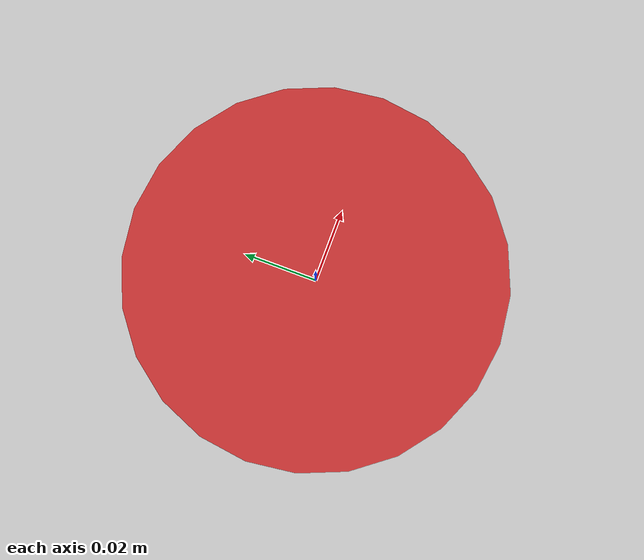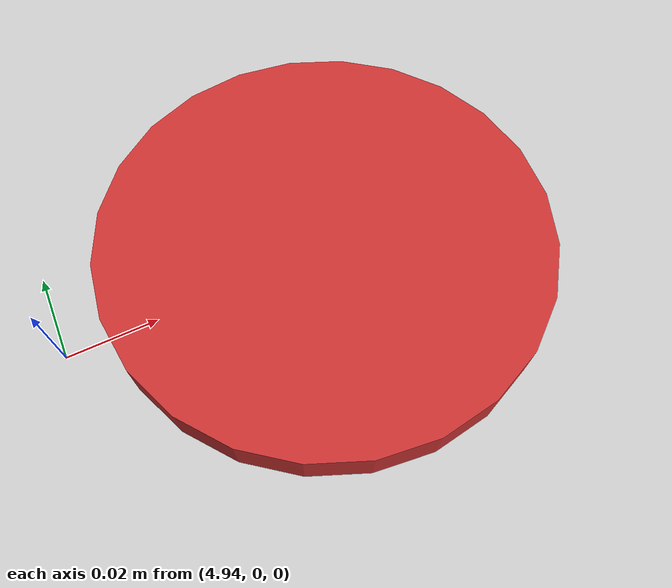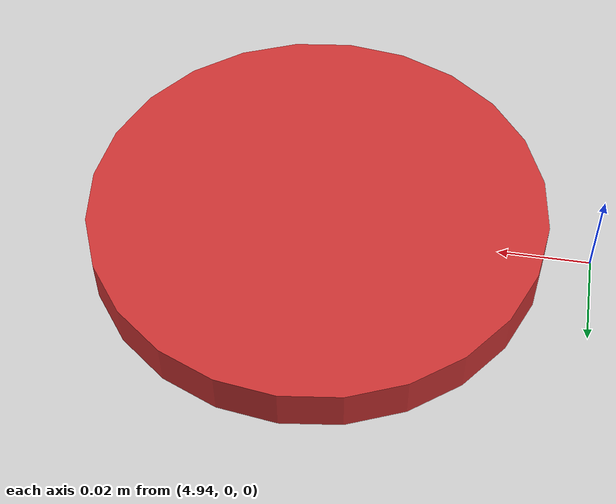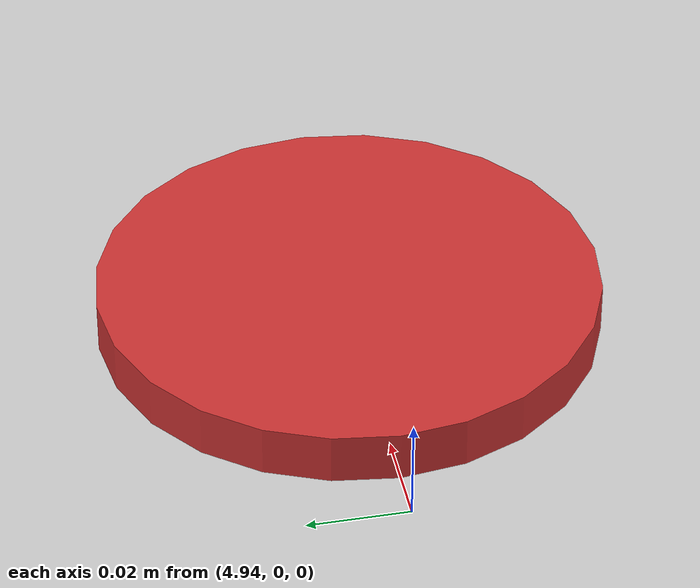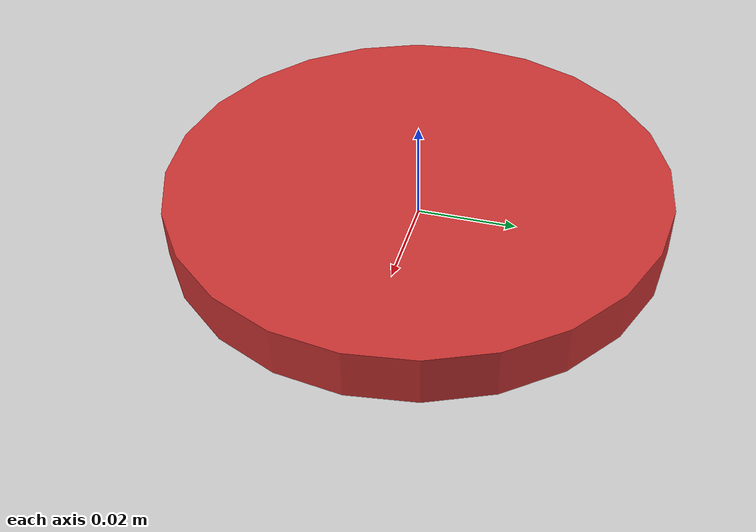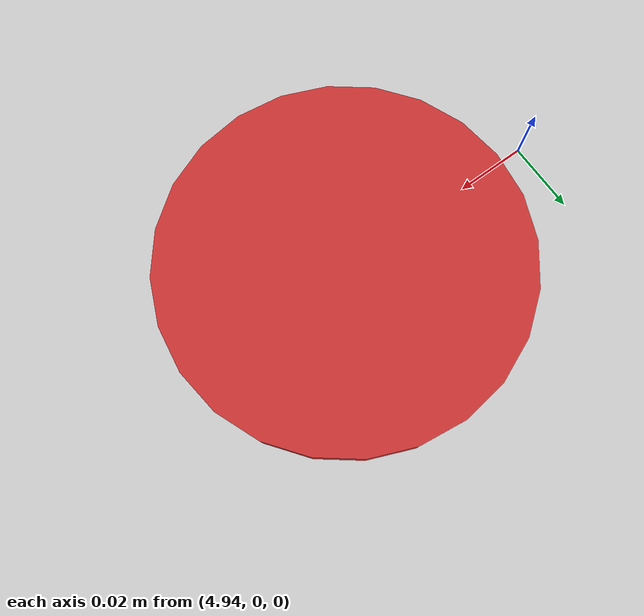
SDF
<?xml version='1.0' encoding='utf-8'?>
<sdf version="1.7">&lt;?xml version="1.0"?&gt;
	<world name="moving_cube">

		<physics name="1ms" type="ignored">
			<max_step_size>0.001</max_step_size>
			<real_time_factor>1.0</real_time_factor>
		</physics>
		<plugin
			filename="libignition-gazebo-physics-system.so"
			name="ignition::gazebo::systems::Physics">
		</plugin>
		<plugin
			filename="libignition-gazebo-user-commands-system.so"
			name="ignition::gazebo::systems::UserCommands">
		</plugin>
		<plugin
			filename="libignition-gazebo-scene-broadcaster-system.so"
			name="ignition::gazebo::systems::SceneBroadcaster">
		</plugin>
		<plugin
			name="gz::sim::systems::ApplyLinkWrench"
			filename="libignition-gazebo-apply-link-wrench-system.so">
		</plugin>

		<light type="directional" name="sun">
			<cast_shadows>true</cast_shadows>
			<pose>0 0 10 0 0 0</pose>
			<diffuse>0.8 0.8 0.8 1</diffuse>
			<specular>0.2 0.2 0.2 1</specular>
			<attenuation>
				<range>1000</range>
				<constant>0.9</constant>
				<linear>0.01</linear>
				<quadratic>0.001</quadratic>
			</attenuation>
			<direction>-0.5 0.1 -0.9</direction>
		</light>

	<model name="connect_robot1">
	<pose>5 0 0 0 0 0</pose>
	  <!-- Define the connector link -->
    <link name="connector_link">

      <!-- Visual -->
      <visual name="visual">
        <geometry>
          <cylinder>
            <radius>0.05</radius>
            <length>0.02</length>
          </cylinder>
        </geometry>
        <material>
          <ambient>0.8 0.2 0.2 1.0</ambient>
        </material>
      </visual>

      <!-- Collision -->
      <collision name="collision">
        <geometry>
          <cylinder>
            <radius>0.05</radius>
            <length>0.02</length>
          </cylinder>
        </geometry>
      </collision>

      <!-- Inertial -->
      <inertial>
        <mass>0.1</mass>
        <inertia>
          <ixx>0.0001</ixx>
          <ixy>0.0</ixy>
          <ixz>0.0</ixz>
          <iyy>0.0001</iyy>
          <iyz>0.0</iyz>
          <izz>0.0001</izz>
        </inertia>
      </inertial>
    </link>
</model>
<model name="connect_robot2">

  <!-- Define the connector link -->
    <link name="connector_link">
     <pose>0 0 0 0 0 0</pose>
      <!-- Visual -->
      <visual name="visual">
        <geometry>
          <cylinder>
            <radius>0.05</radius>
            <length>0.02</length>
          </cylinder>
        </geometry>
        <material>
          <ambient>0.8 0.2 0.2 1.0</ambient>
        </material>
      </visual>

      <!-- Collision -->
      <collision name="collision">
        <geometry>
          <cylinder>
            <radius>0.05</radius>
            <length>0.02</length>
          </cylinder>
        </geometry>
      </collision>

      <!-- Inertial -->
      <inertial>
        <mass>0.1</mass>
        <inertia>
          <ixx>0.0001</ixx>
          <ixy>0.0</ixy>
          <ixz>0.0</ixz>
          <iyy>0.0001</iyy>
          <iyz>0.0</iyz>
          <izz>0.0001</izz>
        </inertia>
      </inertial>
    </link>
  </model>

		<model name="ground_plane">
			<static>true</static>
			<link name="link">
				<collision name="collision">
					<geometry>
					<plane>
						<normal>0 0 1</normal>
					</plane>
					</geometry>
				</collision>
				<visual name="visual">
					<geometry>
					<plane>
						<normal>0 0 1</normal>
						<size>100 100</size>
					</plane>
					</geometry>
					<material>
						<ambient>0.8 0.8 0.8 1</ambient>
						<diffuse>0.8 0.8 0.8 1</diffuse>
						<specular>0.8 0.8 0.8 1</specular>
					</material>
				</visual>
			</link>
		</model>
</world></sdf>
